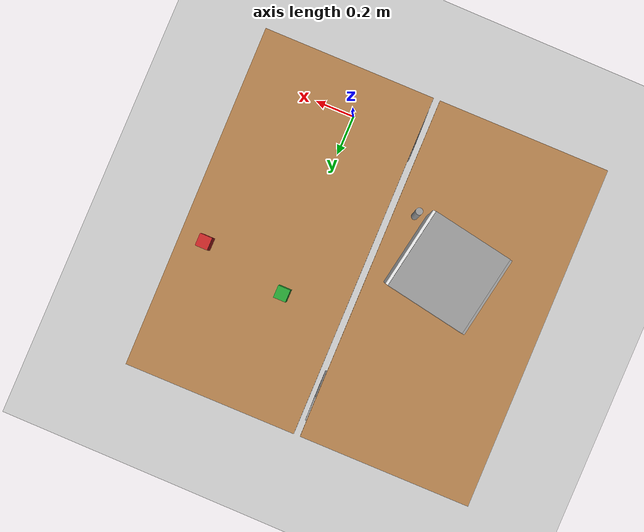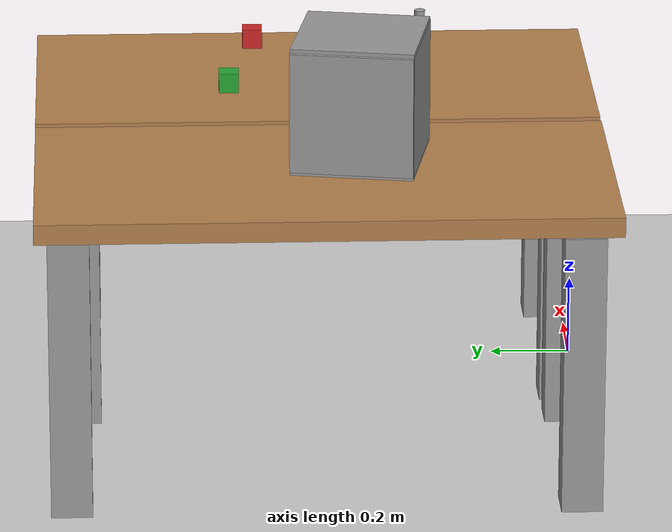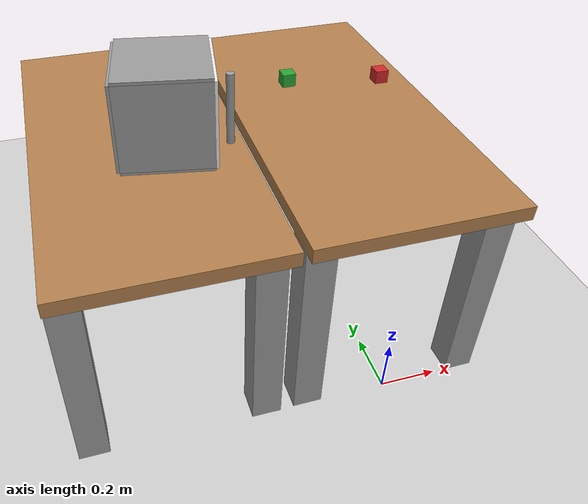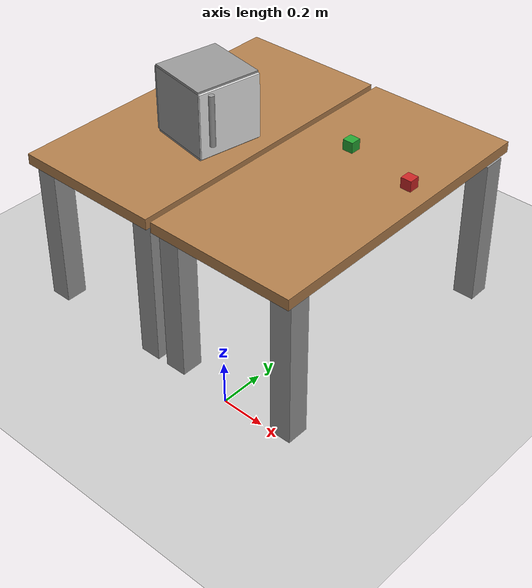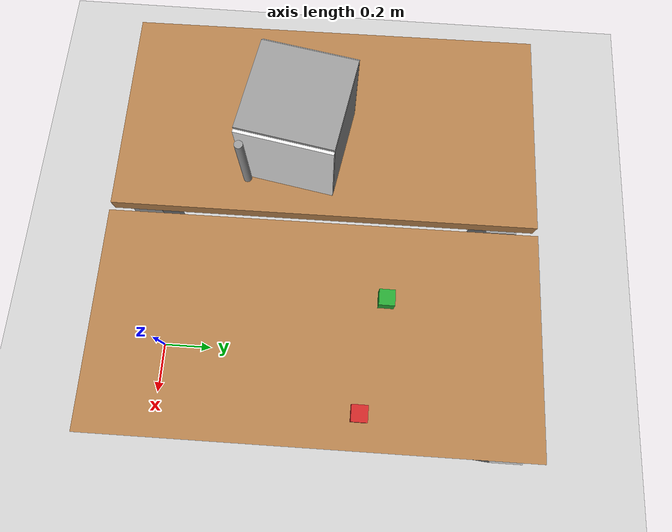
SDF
<sdf version="1.7">
 <world name="default">
  <light name="sun" type="directional">
   <pose>0 0 10 0 -0 0</pose>
   <diffuse>0.8 0.8 0.8 1</diffuse>
   <specular>0.2 0.2 0.2 1</specular>
   <attenuation>
    <range>1000</range>
    <constant>0.9</constant>
    <linear>0.01</linear>
    <quadratic>0.001</quadratic>
   </attenuation>
   <direction>-0.5 0.1 -0.9</direction>
   <spot><inner_angle>0</inner_angle><outer_angle>0</outer_angle><falloff>0</falloff></spot>
  </light>
  <model name="ground_plane">
   <static>1</static>
   <link name="link">
    <collision name="collision">
     <geometry><plane><normal>0 0 1</normal><size>100 100</size></plane></geometry>
     <surface>
      <contact><collide_bitmask>65535</collide_bitmask></contact>
      <friction><ode><mu>100</mu><mu2>50</mu2></ode></friction>
     </surface>
    </collision>
    <visual name="visual">
     <cast_shadows>0</cast_shadows>
     <geometry><plane><normal>0 0 1</normal><size>100 100</size></plane></geometry>
     <material>
      <script><uri>file://media/materials/scripts/gazebo.material</uri><name>Gazebo/Grey</name></script>
     </material>
    </visual>
   </link>
  </model>
  <gravity>0 0 -9.8</gravity>
  <magnetic_field>6e-06 2.3e-05 -4.2e-05</magnetic_field>
  <atmosphere type="adiabatic"/>
  <physics type="ode">
   <max_step_size>0.001</max_step_size>
   <real_time_factor>1</real_time_factor>
   <real_time_update_rate>1000</real_time_update_rate>
  </physics>
  <scene><ambient>0.4 0.4 0.4 1</ambient><background>0.7 0.7 0.7 1</background><shadows>1</shadows></scene>
  <spherical_coordinates>
   <surface_model>EARTH_WGS84</surface_model>
   <latitude_deg>0</latitude_deg>
   <longitude_deg>0</longitude_deg>
   <elevation>0</elevation>
   <heading_deg>0</heading_deg>
  </spherical_coordinates>
  <model name="Table">
   <static>1</static>
   <link name="leg1">
    <inertial>
     <mass>0.0112693</mass>
     <inertia>
      <ixx>0.00138812</ixx>
      <ixy>0</ixy>
      <ixz>0</ixz>
      <iyy>0.00138812</iyy>
      <iyz>0</iyz>
      <izz>1.878e-05</izz>
     </inertia>
    </inertial>
    <pose>-0 -0.092106 -0.148972 0 -0 0</pose>
    <visual name="visual">
     <geometry><box><size>0.1 0.1 0.699999</size></box></geometry>
     <material>
      <script><name>Gazebo/Grey</name><uri>file://media/materials/scripts/gazebo.material</uri></script>
      <shader type="pixel"><normal_map>__default__</normal_map></shader>
      <ambient>0.3 0.3 0.3 1</ambient>
      <diffuse>0.7 0.7 0.7 1</diffuse>
      <specular>0.01 0.01 0.01 1</specular>
      <emissive>0 0 0 1</emissive>
     </material>
    </visual>
    <collision name="collision">
     <geometry><box><size>0.1 0.1 0.699999</size></box></geometry>
     <surface>
      <friction>
       <ode><mu>1</mu><mu2>1</mu2><fdir1>0 0 0</fdir1><slip1>0</slip1><slip2>0</slip2></ode>
       <torsional>
        <coefficient>1</coefficient>
        <patch_radius>0</patch_radius>
        <surface_radius>0</surface_radius>
        <use_patch_radius>1</use_patch_radius>
        <ode><slip>0</slip></ode>
       </torsional>
      </friction>
      <bounce><restitution_coefficient>0</restitution_coefficient><threshold>1e+06</threshold></bounce>
      <contact>
       <collide_without_contact>0</collide_without_contact>
       <collide_without_contact_bitmask>1</collide_without_contact_bitmask>
       <collide_bitmask>1</collide_bitmask>
       <ode>
        <soft_cfm>0</soft_cfm>
        <soft_erp>0.2</soft_erp>
        <kp>1e+13</kp>
        <kd>1</kd>
        <max_vel>0.01</max_vel>
        <min_depth>0</min_depth>
       </ode>
       <bullet>
        <split_impulse>1</split_impulse>
        <split_impulse_penetration_threshold>-0.01</split_impulse_penetration_threshold>
        <soft_cfm>0</soft_cfm>
        <soft_erp>0.2</soft_erp>
        <kp>1e+13</kp>
        <kd>1</kd>
       </bullet>
      </contact>
     </surface>
    </collision>
   </link>
   <link name="top">
    <inertial>
     <mass>1</mass>
     <inertia>
      <ixx>0.166667</ixx>
      <ixy>0</ixy>
      <ixz>0</ixz>
      <iyy>0.166667</iyy>
      <iyz>0</iyz>
      <izz>0.166667</izz>
     </inertia>
    </inertial>
    <pose>0.610073 0.185782 0.228376 0 -0 0</pose>
    <visual name="visual">
     <geometry><box><size>1.4 0.7 0.05</size></box></geometry>
     <material>
      <lighting>1</lighting>
      <script><uri>file://media/materials/scripts/gazebo.material</uri><name>Gazebo/Wood</name></script>
      <shader type="pixel"><normal_map>__default__</normal_map></shader>
      <ambient>0.3 0.3 0.3 1</ambient>
      <diffuse>0.7 0.7 0.7 1</diffuse>
      <specular>0.01 0.01 0.01 1</specular>
      <emissive>0 0 0 1</emissive>
     </material>
    </visual>
    <collision name="collision">
     <geometry><box><size>1.4 0.7 0.05</size></box></geometry>
     <surface>
      <friction>
       <ode><mu>1</mu><mu2>1</mu2><fdir1>0 0 0</fdir1><slip1>0</slip1><slip2>0</slip2></ode>
       <torsional>
        <coefficient>1</coefficient>
        <patch_radius>0</patch_radius>
        <surface_radius>0</surface_radius>
        <use_patch_radius>1</use_patch_radius>
        <ode><slip>0</slip></ode>
       </torsional>
      </friction>
      <bounce><restitution_coefficient>0</restitution_coefficient><threshold>1e+06</threshold></bounce>
      <contact>
       <collide_without_contact>0</collide_without_contact>
       <collide_without_contact_bitmask>1</collide_without_contact_bitmask>
       <collide_bitmask>1</collide_bitmask>
       <ode>
        <soft_cfm>0</soft_cfm>
        <soft_erp>0.2</soft_erp>
        <kp>1e+13</kp>
        <kd>1</kd>
        <max_vel>0.01</max_vel>
        <min_depth>0</min_depth>
       </ode>
       <bullet>
        <split_impulse>1</split_impulse>
        <split_impulse_penetration_threshold>-0.01</split_impulse_penetration_threshold>
        <soft_cfm>0</soft_cfm>
        <soft_erp>0.2</soft_erp>
        <kp>1e+13</kp>
        <kd>1</kd>
       </bullet>
      </contact>
     </surface>
    </collision>
   </link>
   <link name="leg_2">
    <inertial>
     <mass>0.0112693</mass>
     <inertia>
      <ixx>0.00138812</ixx>
      <ixy>0</ixy>
      <ixz>0</ixz>
      <iyy>0.00138812</iyy>
      <iyz>0</iyz>
      <izz>1.878e-05</izz>
     </inertia>
    </inertial>
    <pose>0.002157 0.486808 -0.148972 0 -0 0</pose>
    <visual name="visual">
     <geometry><box><size>0.1 0.1 0.699999</size></box></geometry>
     <material>
      <script><name>Gazebo/Grey</name><uri>file://media/materials/scripts/gazebo.material</uri></script>
      <shader type="pixel"><normal_map>__default__</normal_map></shader>
      <ambient>0.3 0.3 0.3 1</ambient>
      <diffuse>0.7 0.7 0.7 1</diffuse>
      <specular>0.01 0.01 0.01 1</specular>
      <emissive>0 0 0 1</emissive>
     </material>
    </visual>
    <collision name="collision">
     <geometry><box><size>0.1 0.1 0.699999</size></box></geometry>
     <surface>
      <friction>
       <ode><mu>1</mu><mu2>1</mu2><fdir1>0 0 0</fdir1><slip1>0</slip1><slip2>0</slip2></ode>
       <torsional>
        <coefficient>1</coefficient>
        <patch_radius>0</patch_radius>
        <surface_radius>0</surface_radius>
        <use_patch_radius>1</use_patch_radius>
        <ode><slip>0</slip></ode>
       </torsional>
      </friction>
      <bounce><restitution_coefficient>0</restitution_coefficient><threshold>1e+06</threshold></bounce>
      <contact>
       <collide_without_contact>0</collide_without_contact>
       <collide_without_contact_bitmask>1</collide_without_contact_bitmask>
       <collide_bitmask>1</collide_bitmask>
       <ode>
        <soft_cfm>0</soft_cfm>
        <soft_erp>0.2</soft_erp>
        <kp>1e+13</kp>
        <kd>1</kd>
        <max_vel>0.01</max_vel>
        <min_depth>0</min_depth>
       </ode>
       <bullet>
        <split_impulse>1</split_impulse>
        <split_impulse_penetration_threshold>-0.01</split_impulse_penetration_threshold>
        <soft_cfm>0</soft_cfm>
        <soft_erp>0.2</soft_erp>
        <kp>1e+13</kp>
        <kd>1</kd>
       </bullet>
      </contact>
     </surface>
    </collision>
   </link>
   <link name="leg_3">
    <inertial>
     <mass>0.0112693</mass>
     <inertia>
      <ixx>0.00138812</ixx>
      <ixy>0</ixy>
      <ixz>0</ixz>
      <iyy>0.00138812</iyy>
      <iyz>0</iyz>
      <izz>1.878e-05</izz>
     </inertia>
    </inertial>
    <pose>1.22888 0.47641 -0.148972 0 -0 0</pose>
    <visual name="visual">
     <geometry><box><size>0.1 0.1 0.699999</size></box></geometry>
     <material>
      <script><name>Gazebo/Grey</name><uri>file://media/materials/scripts/gazebo.material</uri></script>
      <shader type="pixel"><normal_map>__default__</normal_map></shader>
      <ambient>0.3 0.3 0.3 1</ambient>
      <diffuse>0.7 0.7 0.7 1</diffuse>
      <specular>0.01 0.01 0.01 1</specular>
      <emissive>0 0 0 1</emissive>
     </material>
    </visual>
    <collision name="collision">
     <geometry><box><size>0.1 0.1 0.699999</size></box></geometry>
     <surface>
      <friction>
       <ode><mu>1</mu><mu2>1</mu2><fdir1>0 0 0</fdir1><slip1>0</slip1><slip2>0</slip2></ode>
       <torsional>
        <coefficient>1</coefficient>
        <patch_radius>0</patch_radius>
        <surface_radius>0</surface_radius>
        <use_patch_radius>1</use_patch_radius>
        <ode><slip>0</slip></ode>
       </torsional>
      </friction>
      <bounce><restitution_coefficient>0</restitution_coefficient><threshold>1e+06</threshold></bounce>
      <contact>
       <collide_without_contact>0</collide_without_contact>
       <collide_without_contact_bitmask>1</collide_without_contact_bitmask>
       <collide_bitmask>1</collide_bitmask>
       <ode>
        <soft_cfm>0</soft_cfm>
        <soft_erp>0.2</soft_erp>
        <kp>1e+13</kp>
        <kd>1</kd>
        <max_vel>0.01</max_vel>
        <min_depth>0</min_depth>
       </ode>
       <bullet>
        <split_impulse>1</split_impulse>
        <split_impulse_penetration_threshold>-0.01</split_impulse_penetration_threshold>
        <soft_cfm>0</soft_cfm>
        <soft_erp>0.2</soft_erp>
        <kp>1e+13</kp>
        <kd>1</kd>
       </bullet>
      </contact>
     </surface>
    </collision>
   </link>
   <link name="leg_4">
    <inertial>
     <mass>0.0112693</mass>
     <inertia>
      <ixx>0.00138812</ixx>
      <ixy>0</ixy>
      <ixz>0</ixz>
      <iyy>0.00138812</iyy>
      <iyz>0</iyz>
      <izz>1.878e-05</izz>
     </inertia>
    </inertial>
    <pose>1.2067 -0.120412 -0.148972 0 -0 0</pose>
    <visual name="visual">
     <geometry><box><size>0.1 0.1 0.699999</size></box></geometry>
     <material>
      <script><name>Gazebo/Grey</name><uri>file://media/materials/scripts/gazebo.material</uri></script>
      <shader type="pixel"><normal_map>__default__</normal_map></shader>
      <ambient>0.3 0.3 0.3 1</ambient>
      <diffuse>0.7 0.7 0.7 1</diffuse>
      <specular>0.01 0.01 0.01 1</specular>
      <emissive>0 0 0 1</emissive>
     </material>
    </visual>
    <collision name="collision">
     <geometry><box><size>0.1 0.1 0.699999</size></box></geometry>
     <surface>
      <friction>
       <ode><mu>1</mu><mu2>1</mu2><fdir1>0 0 0</fdir1><slip1>0</slip1><slip2>0</slip2></ode>
       <torsional>
        <coefficient>1</coefficient>
        <patch_radius>0</patch_radius>
        <surface_radius>0</surface_radius>
        <use_patch_radius>1</use_patch_radius>
        <ode><slip>0</slip></ode>
       </torsional>
      </friction>
      <bounce><restitution_coefficient>0</restitution_coefficient><threshold>1e+06</threshold></bounce>
      <contact>
       <collide_without_contact>0</collide_without_contact>
       <collide_without_contact_bitmask>1</collide_without_contact_bitmask>
       <collide_bitmask>1</collide_bitmask>
       <ode>
        <soft_cfm>0</soft_cfm>
        <soft_erp>0.2</soft_erp>
        <kp>1e+13</kp>
        <kd>1</kd>
        <max_vel>0.01</max_vel>
        <min_depth>0</min_depth>
       </ode>
       <bullet>
        <split_impulse>1</split_impulse>
        <split_impulse_penetration_threshold>-0.01</split_impulse_penetration_threshold>
        <soft_cfm>0</soft_cfm>
        <soft_erp>0.2</soft_erp>
        <kp>1e+13</kp>
        <kd>1</kd>
       </bullet>
      </contact>
     </surface>
    </collision>
   </link>
   <joint name="link_1_JOINT_0" type="fixed">
    <parent>link_1</parent>
    <child>link</child>
    <physics>
     <ode><limit><cfm>0</cfm><erp>0.2</erp></limit><suspension><cfm>0</cfm><erp>0.2</erp></suspension></ode>
    </physics>
   </joint>
   <joint name="link_1_JOINT_1" type="fixed">
    <parent>link_1</parent>
    <child>link_clone</child>
    <physics>
     <ode><limit><cfm>0</cfm><erp>0.2</erp></limit><suspension><cfm>0</cfm><erp>0.2</erp></suspension></ode>
    </physics>
   </joint>
   <joint name="link_1_JOINT_2" type="fixed">
    <parent>link_1</parent>
    <child>link_clone_clone_clone</child>
    <physics>
     <ode><limit><cfm>0</cfm><erp>0.2</erp></limit><suspension><cfm>0</cfm><erp>0.2</erp></suspension></ode>
    </physics>
   </joint>
   <joint name="link_1_JOINT_3" type="fixed">
    <parent>link_1</parent>
    <child>link_clone_clone</child>
    <physics>
     <ode><limit><cfm>0</cfm><erp>0.2</erp></limit><suspension><cfm>0</cfm><erp>0.2</erp></suspension></ode>
    </physics>
   </joint>
   <static>0</static>
   <pose>0.203184 0.049403 0.49897 0.000135 -3.1e-05 1.57966</pose>
  </model>
  <model name="green_box_1">
   <pose>-0.095 0.872659 0.777412 2.5e-05 0.000134 3.8e-05</pose>
   <link name="link">
    <inertial>
     <mass>1</mass>
     <inertia>
      <ixx>0.166667</ixx>
      <ixy>0</ixy>
      <ixz>0</ixz>
      <iyy>0.166667</iyy>
      <iyz>0</iyz>
      <izz>0.166667</izz>
     </inertia>
    </inertial>
    <collision name="collision"><geometry><box><size>0.05 0.05 0.05</size></box></geometry></collision>
    <visual name="visual">
     <geometry><box><size>0.05 0.05 0.05</size></box></geometry>
     <material>
      <script><name>Gazebo/Green</name><uri>file://media/materials/scripts/gazebo.material</uri></script>
     </material>
    </visual>
   </link>
  </model>
  <model name="red_box_1">
   <pose>0.254034 0.807767 0.777364 9.3e-05 0.000137 3.6e-05</pose>
   <link name="link">
    <inertial>
     <mass>1</mass>
     <inertia>
      <ixx>0.166667</ixx>
      <ixy>0</ixy>
      <ixz>0</ixz>
      <iyy>0.166667</iyy>
      <iyz>0</iyz>
      <izz>0.166667</izz>
     </inertia>
    </inertial>
    <collision name="collision"><geometry><box><size>0.05 0.05 0.05</size></box></geometry></collision>
    <visual name="visual">
     <geometry><box><size>0.05 0.05 0.05</size></box></geometry>
     <material>
      <script><name>Gazebo/Red</name><uri>file://media/materials/scripts/gazebo.material</uri></script>
     </material>
    </visual>
   </link>
  </model>
  <model name="Cabinet30_0">
   <link name="link_0">
    <inertial>
     <mass>1</mass>
     <inertia>
      <ixx>0.166667</ixx>
      <ixy>0</ixy>
      <ixz>0</ixz>
      <iyy>0.166667</iyy>
      <iyz>0</iyz>
      <izz>0.166667</izz>
     </inertia>
     <joint name="bc" type="fixed">
      <parent>world</parent>
      <child>Cabinet30::link_0</child>
      <physics>
       <ode><implicit_spring_damper>1</implicit_spring_damper><cfm>0.9</cfm><erp>0.2</erp></ode>
       <provide_feedback>1</provide_feedback>
      </physics>
     </joint>
    </inertial>
    <pose>0.028253 0.00951 -0.156009 0 -0 0</pose>
    <visual name="visual">
     <geometry><box><size>0.3 0.3 0.02</size></box></geometry>
     <material>
      <lighting>1</lighting>
      <script><uri>file://media/materials/scripts/gazebo.material</uri><name>Gazebo/Grey</name></script>
      <shader type="pixel"><normal_map>__default__</normal_map></shader>
      <ambient>0.3 0.3 0.3 1</ambient>
      <diffuse>0.7 0.7 0.7 1</diffuse>
      <specular>0.01 0.01 0.01 1</specular>
      <emissive>0 0 0 1</emissive>
     </material>
    </visual>
    <collision name="collision">
     <geometry><box><size>0.3 0.3 0.02</size></box></geometry>
     <surface>
      <friction>
       <ode><mu>1</mu><mu2>1</mu2><fdir1>0 0 0</fdir1><slip1>0</slip1><slip2>0</slip2></ode>
       <torsional>
        <coefficient>1</coefficient>
        <patch_radius>0</patch_radius>
        <surface_radius>0</surface_radius>
        <use_patch_radius>1</use_patch_radius>
        <ode><slip>0</slip></ode>
       </torsional>
      </friction>
      <bounce><restitution_coefficient>0</restitution_coefficient><threshold>1e+06</threshold></bounce>
      <contact>
       <collide_without_contact>0</collide_without_contact>
       <collide_without_contact_bitmask>1</collide_without_contact_bitmask>
       <collide_bitmask>1</collide_bitmask>
       <ode>
        <soft_cfm>0</soft_cfm>
        <soft_erp>0.2</soft_erp>
        <kp>1e+13</kp>
        <kd>1</kd>
        <max_vel>0.01</max_vel>
        <min_depth>0</min_depth>
       </ode>
       <bullet>
        <split_impulse>1</split_impulse>
        <split_impulse_penetration_threshold>-0.01</split_impulse_penetration_threshold>
        <soft_cfm>0</soft_cfm>
        <soft_erp>0.2</soft_erp>
        <kp>1e+13</kp>
        <kd>1</kd>
       </bullet>
      </contact>
     </surface>
    </collision>
   </link>
   <link name="link_0_clone">
    <inertial>
     <mass>1</mass>
     <inertia>
      <ixx>0.166667</ixx>
      <ixy>0</ixy>
      <ixz>0</ixz>
      <iyy>0.166667</iyy>
      <iyz>0</iyz>
      <izz>0.166667</izz>
     </inertia>
    </inertial>
    <pose>0.028253 0.00951 0.143991 0 -0 0</pose>
    <visual name="visual">
     <geometry><box><size>0.3 0.3 0.02</size></box></geometry>
     <material>
      <lighting>1</lighting>
      <script><uri>file://media/materials/scripts/gazebo.material</uri><name>Gazebo/Grey</name></script>
      <shader type="pixel"><normal_map>__default__</normal_map></shader>
      <ambient>0.3 0.3 0.3 1</ambient>
      <diffuse>0.7 0.7 0.7 1</diffuse>
      <specular>0.01 0.01 0.01 1</specular>
      <emissive>0 0 0 1</emissive>
     </material>
    </visual>
    <collision name="collision">
     <geometry><box><size>0.3 0.3 0.02</size></box></geometry>
     <surface>
      <friction>
       <ode><mu>1</mu><mu2>1</mu2><fdir1>0 0 0</fdir1><slip1>0</slip1><slip2>0</slip2></ode>
       <torsional>
        <coefficient>1</coefficient>
        <patch_radius>0</patch_radius>
        <surface_radius>0</surface_radius>
        <use_patch_radius>1</use_patch_radius>
        <ode><slip>0</slip></ode>
       </torsional>
      </friction>
      <bounce><restitution_coefficient>0</restitution_coefficient><threshold>1e+06</threshold></bounce>
      <contact>
       <collide_without_contact>0</collide_without_contact>
       <collide_without_contact_bitmask>1</collide_without_contact_bitmask>
       <collide_bitmask>1</collide_bitmask>
       <ode>
        <soft_cfm>0</soft_cfm>
        <soft_erp>0.2</soft_erp>
        <kp>1e+13</kp>
        <kd>1</kd>
        <max_vel>0.01</max_vel>
        <min_depth>0</min_depth>
       </ode>
       <bullet>
        <split_impulse>1</split_impulse>
        <split_impulse_penetration_threshold>-0.01</split_impulse_penetration_threshold>
        <soft_cfm>0</soft_cfm>
        <soft_erp>0.2</soft_erp>
        <kp>1e+13</kp>
        <kd>1</kd>
       </bullet>
      </contact>
     </surface>
    </collision>
   </link>
   <link name="link_0_clone_clone">
    <inertial>
     <mass>1</mass>
     <inertia>
      <ixx>0.166667</ixx>
      <ixy>0</ixy>
      <ixz>0</ixz>
      <iyy>0.166667</iyy>
      <iyz>0</iyz>
      <izz>0.166667</izz>
     </inertia>
    </inertial>
    <pose>0.028253 0.15951 -0.006009 0 -0 0</pose>
    <visual name="visual">
     <geometry><box><size>0.3 0.002 0.3</size></box></geometry>
     <material>
      <lighting>1</lighting>
      <script><uri>file://media/materials/scripts/gazebo.material</uri><name>Gazebo/Grey</name></script>
      <shader type="pixel"><normal_map>__default__</normal_map></shader>
      <ambient>0.3 0.3 0.3 1</ambient>
      <diffuse>0.7 0.7 0.7 1</diffuse>
      <specular>0.01 0.01 0.01 1</specular>
      <emissive>0 0 0 1</emissive>
     </material>
    </visual>
    <collision name="collision">
     <geometry><box><size>0.3 0.02 0.3</size></box></geometry>
     <surface>
      <friction>
       <ode><mu>1</mu><mu2>1</mu2><fdir1>0 0 0</fdir1><slip1>0</slip1><slip2>0</slip2></ode>
       <torsional>
        <coefficient>1</coefficient>
        <patch_radius>0</patch_radius>
        <surface_radius>0</surface_radius>
        <use_patch_radius>1</use_patch_radius>
        <ode><slip>0</slip></ode>
       </torsional>
      </friction>
      <bounce><restitution_coefficient>0</restitution_coefficient><threshold>1e+06</threshold></bounce>
      <contact>
       <collide_without_contact>0</collide_without_contact>
       <collide_without_contact_bitmask>1</collide_without_contact_bitmask>
       <collide_bitmask>1</collide_bitmask>
       <ode>
        <soft_cfm>0</soft_cfm>
        <soft_erp>0.2</soft_erp>
        <kp>1e+13</kp>
        <kd>1</kd>
        <max_vel>0.01</max_vel>
        <min_depth>0</min_depth>
       </ode>
       <bullet>
        <split_impulse>1</split_impulse>
        <split_impulse_penetration_threshold>-0.01</split_impulse_penetration_threshold>
        <soft_cfm>0</soft_cfm>
        <soft_erp>0.2</soft_erp>
        <kp>1e+13</kp>
        <kd>1</kd>
       </bullet>
      </contact>
     </surface>
    </collision>
   </link>
   <link name="link_0_clone_clone_clone">
    <inertial>
     <mass>1</mass>
     <inertia>
      <ixx>0.166667</ixx>
      <ixy>0</ixy>
      <ixz>0</ixz>
      <iyy>0.166667</iyy>
      <iyz>0</iyz>
      <izz>0.166667</izz>
     </inertia>
    </inertial>
    <pose>0.028253 -0.14049 -0.006009 0 -0 0</pose>
    <visual name="visual">
     <geometry><box><size>0.3 0.002 0.3</size></box></geometry>
     <material>
      <lighting>1</lighting>
      <script><uri>file://media/materials/scripts/gazebo.material</uri><name>Gazebo/Grey</name></script>
      <shader type="pixel"><normal_map>__default__</normal_map></shader>
      <ambient>0.3 0.3 0.3 1</ambient>
      <diffuse>0.7 0.7 0.7 1</diffuse>
      <specular>0.01 0.01 0.01 1</specular>
      <emissive>0 0 0 1</emissive>
     </material>
    </visual>
    <collision name="collision">
     <geometry><box><size>0.3 0.02 0.3</size></box></geometry>
     <surface>
      <friction>
       <ode><mu>1</mu><mu2>1</mu2><fdir1>0 0 0</fdir1><slip1>0</slip1><slip2>0</slip2></ode>
       <torsional>
        <coefficient>1</coefficient>
        <patch_radius>0</patch_radius>
        <surface_radius>0</surface_radius>
        <use_patch_radius>1</use_patch_radius>
        <ode><slip>0</slip></ode>
       </torsional>
      </friction>
      <bounce><restitution_coefficient>0</restitution_coefficient><threshold>1e+06</threshold></bounce>
      <contact>
       <collide_without_contact>0</collide_without_contact>
       <collide_without_contact_bitmask>1</collide_without_contact_bitmask>
       <collide_bitmask>1</collide_bitmask>
       <ode>
        <soft_cfm>0</soft_cfm>
        <soft_erp>0.2</soft_erp>
        <kp>1e+13</kp>
        <kd>1</kd>
        <max_vel>0.01</max_vel>
        <min_depth>0</min_depth>
       </ode>
       <bullet>
        <split_impulse>1</split_impulse>
        <split_impulse_penetration_threshold>-0.01</split_impulse_penetration_threshold>
        <soft_cfm>0</soft_cfm>
        <soft_erp>0.2</soft_erp>
        <kp>1e+13</kp>
        <kd>1</kd>
       </bullet>
      </contact>
     </surface>
    </collision>
   </link>
   <link name="link_0_clone_clone_clone_clone">
    <inertial>
     <mass>1</mass>
     <inertia>
      <ixx>0.166667</ixx>
      <ixy>0</ixy>
      <ixz>0</ixz>
      <iyy>0.166667</iyy>
      <iyz>0</iyz>
      <izz>0.166667</izz>
     </inertia>
    </inertial>
    <pose>0.178253 0.00951 -0.006009 0 -0 0</pose>
    <visual name="visual">
     <geometry><box><size>0.02 0.3 0.3</size></box></geometry>
     <material>
      <lighting>1</lighting>
      <script><uri>file://media/materials/scripts/gazebo.material</uri><name>Gazebo/Grey</name></script>
      <shader type="pixel"><normal_map>__default__</normal_map></shader>
      <ambient>0.3 0.3 0.3 1</ambient>
      <diffuse>0.7 0.7 0.7 1</diffuse>
      <specular>0.01 0.01 0.01 1</specular>
      <emissive>0 0 0 1</emissive>
     </material>
    </visual>
    <collision name="collision">
     <geometry><box><size>0.02 0.3 0.3</size></box></geometry>
     <surface>
      <friction>
       <ode><mu>1</mu><mu2>1</mu2><fdir1>0 0 0</fdir1><slip1>0</slip1><slip2>0</slip2></ode>
       <torsional>
        <coefficient>1</coefficient>
        <patch_radius>0</patch_radius>
        <surface_radius>0</surface_radius>
        <use_patch_radius>1</use_patch_radius>
        <ode><slip>0</slip></ode>
       </torsional>
      </friction>
      <bounce><restitution_coefficient>0</restitution_coefficient><threshold>1e+06</threshold></bounce>
      <contact>
       <collide_without_contact>0</collide_without_contact>
       <collide_without_contact_bitmask>1</collide_without_contact_bitmask>
       <collide_bitmask>1</collide_bitmask>
       <ode>
        <soft_cfm>0</soft_cfm>
        <soft_erp>0.2</soft_erp>
        <kp>1e+13</kp>
        <kd>1</kd>
        <max_vel>0.01</max_vel>
        <min_depth>0</min_depth>
       </ode>
       <bullet>
        <split_impulse>1</split_impulse>
        <split_impulse_penetration_threshold>-0.01</split_impulse_penetration_threshold>
        <soft_cfm>0</soft_cfm>
        <soft_erp>0.2</soft_erp>
        <kp>1e+13</kp>
        <kd>1</kd>
       </bullet>
      </contact>
     </surface>
    </collision>
   </link>
   <link name="link_0_clone_clone_clone_clone_clone">
    <inertial>
     <mass>1</mass>
     <inertia>
      <ixx>0.166667</ixx>
      <ixy>0</ixy>
      <ixz>0</ixz>
      <iyy>0.166667</iyy>
      <iyz>0</iyz>
      <izz>0.166667</izz>
     </inertia>
    </inertial>
    <pose>-0.121747 0.00951 -0.006009 0 -0 0</pose>
    <visual name="visual">
     <geometry><box><size>0.02 0.3 0.3</size></box></geometry>
     <material>
      <script><name>Gazebo/White</name><uri>file://media/materials/scripts/gazebo.material</uri></script>
      <shader type="pixel"/>
     </material>
    </visual>
    <collision name="collision">
     <geometry><box><size>0.02 0.3 0.3</size></box></geometry>
     <surface>
      <friction>
       <ode><mu>1</mu><mu2>1</mu2><fdir1>0 0 0</fdir1><slip1>0</slip1><slip2>0</slip2></ode>
       <torsional>
        <coefficient>1</coefficient>
        <patch_radius>0</patch_radius>
        <surface_radius>0</surface_radius>
        <use_patch_radius>1</use_patch_radius>
        <ode><slip>0</slip></ode>
       </torsional>
      </friction>
      <bounce><restitution_coefficient>0</restitution_coefficient><threshold>1e+06</threshold></bounce>
      <contact>
       <collide_without_contact>0</collide_without_contact>
       <collide_without_contact_bitmask>1</collide_without_contact_bitmask>
       <collide_bitmask>1</collide_bitmask>
       <ode>
        <soft_cfm>0</soft_cfm>
        <soft_erp>0.2</soft_erp>
        <kp>1e+13</kp>
        <kd>1</kd>
        <max_vel>0.01</max_vel>
        <min_depth>0</min_depth>
       </ode>
       <bullet>
        <split_impulse>1</split_impulse>
        <split_impulse_penetration_threshold>-0.01</split_impulse_penetration_threshold>
        <soft_cfm>0</soft_cfm>
        <soft_erp>0.2</soft_erp>
        <kp>1e+13</kp>
        <kd>1</kd>
       </bullet>
      </contact>
     </surface>
    </collision>
   </link>
   <link name="link_1">
    <inertial>
     <mass>0.000152659</mass>
     <inertia>
      <ixx>7.05744e-07</ixx>
      <ixy>0</ixy>
      <ixz>0</ixz>
      <iyy>7.05744e-07</iyy>
      <iyz>0</iyz>
      <izz>1.28386e-08</izz>
     </inertia>
    </inertial>
    <pose>-0.16952 0.127825 0.036056 0 -0 0</pose>
    <visual name="visual">
     <geometry><cylinder><radius>0.0129692</radius><length>0.23446</length></cylinder></geometry>
     <material>
      <lighting>1</lighting>
      <script><uri>file://media/materials/scripts/gazebo.material</uri><name>Gazebo/Grey</name></script>
      <shader type="pixel"/>
      <emissive>0 0 0 1</emissive>
     </material>
    </visual>
    <collision name="collision">
     <geometry><cylinder><radius>0.012969</radius><length>0.23446</length></cylinder></geometry>
     <surface>
      <friction>
       <ode><mu>1</mu><mu2>1</mu2><fdir1>0 0 0</fdir1><slip1>0</slip1><slip2>0</slip2></ode>
       <torsional>
        <coefficient>1</coefficient>
        <patch_radius>0</patch_radius>
        <surface_radius>0</surface_radius>
        <use_patch_radius>1</use_patch_radius>
        <ode><slip>0</slip></ode>
       </torsional>
      </friction>
      <bounce><restitution_coefficient>0</restitution_coefficient><threshold>1e+06</threshold></bounce>
      <contact>
       <collide_without_contact>0</collide_without_contact>
       <collide_without_contact_bitmask>1</collide_without_contact_bitmask>
       <collide_bitmask>1</collide_bitmask>
       <ode>
        <soft_cfm>0</soft_cfm>
        <soft_erp>0.2</soft_erp>
        <kp>1e+13</kp>
        <kd>1</kd>
        <max_vel>0.01</max_vel>
        <min_depth>0</min_depth>
       </ode>
       <bullet>
        <split_impulse>1</split_impulse>
        <split_impulse_penetration_threshold>-0.01</split_impulse_penetration_threshold>
        <soft_cfm>0</soft_cfm>
        <soft_erp>0.2</soft_erp>
        <kp>1e+13</kp>
        <kd>1</kd>
       </bullet>
      </contact>
     </surface>
    </collision>
   </link>
   <joint name="link_0_JOINT_0" type="fixed">
    <parent>link_0</parent>
    <child>link_0_clone_clone_clone_clone</child>
    <physics>
     <ode><limit><cfm>0</cfm><erp>0.2</erp></limit><suspension><cfm>0</cfm><erp>0.2</erp></suspension></ode>
    </physics>
   </joint>
   <joint name="link_0_JOINT_1" type="fixed">
    <parent>link_0</parent>
    <child>link_0_clone_clone</child>
    <physics>
     <ode><limit><cfm>0</cfm><erp>0.2</erp></limit><suspension><cfm>0</cfm><erp>0.2</erp></suspension></ode>
    </physics>
   </joint>
   <joint name="link_0_JOINT_2" type="fixed">
    <parent>link_0</parent>
    <child>link_0_clone_clone_clone</child>
    <physics>
     <ode><limit><cfm>0</cfm><erp>0.2</erp></limit><suspension><cfm>0</cfm><erp>0.2</erp></suspension></ode>
    </physics>
   </joint>
   <joint name="link_0_JOINT_3" type="fixed">
    <parent>link_0</parent>
    <child>link_0_clone</child>
    <physics>
     <ode><limit><cfm>0</cfm><erp>0.2</erp></limit><suspension><cfm>0</cfm><erp>0.2</erp></suspension></ode>
    </physics>
   </joint>
   <joint name="link_0_JOINT_4" type="revolute">
    <parent>link_0</parent>
    <child>link_0_clone_clone_clone_clone_clone</child>
    <pose>0 -0.16 0 0 -0 0</pose>
    <axis>
     <xyz>0 0 1</xyz>
     <limit><lower>-0</lower><upper>1.75</upper><effort>-1</effort><velocity>-1</velocity></limit>
     <dynamics>
      <spring_reference>0</spring_reference>
      <spring_stiffness>0</spring_stiffness>
      <damping>0</damping>
      <friction>0.5</friction>
     </dynamics>
    </axis>
    <physics>
     <ode><limit><cfm>0</cfm><erp>0.2</erp></limit><suspension><cfm>0</cfm><erp>0.2</erp></suspension></ode>
    </physics>
   </joint>
   <joint name="link_0_clone_clone_clone_clone_clone_JOINT_5" type="revolute">
    <parent>link_0_clone_clone_clone_clone_clone</parent>
    <child>link_1</child>
    <axis>
     <xyz>0 0 1</xyz>
     <limit>
      <lower>-1.79769e+308</lower>
      <upper>1.79769e+308</upper>
      <effort>-1</effort>
      <velocity>-1</velocity>
     </limit>
     <dynamics>
      <spring_reference>0</spring_reference>
      <spring_stiffness>0</spring_stiffness>
      <damping>0</damping>
      <friction>0</friction>
     </dynamics>
    </axis>
    <physics>
     <ode><limit><cfm>0</cfm><erp>0.2</erp></limit><suspension><cfm>0</cfm><erp>0.2</erp></suspension></ode>
    </physics>
   </joint>
   <static>0</static>
   <pose>-0.585292 0.565266 0.918378 -6e-06 -0.000142 2.96817</pose>
  </model>
  <model name="Table_clone">
   <static>1</static>
   <link name="leg1">
    <inertial>
     <mass>0.0112693</mass>
     <inertia>
      <ixx>0.00138812</ixx>
      <ixy>0</ixy>
      <ixz>0</ixz>
      <iyy>0.00138812</iyy>
      <iyz>0</iyz>
      <izz>1.878e-05</izz>
     </inertia>
    </inertial>
    <pose>-0 -0.092106 -0.148972 0 -0 0</pose>
    <visual name="visual">
     <geometry><box><size>0.1 0.1 0.699999</size></box></geometry>
     <material>
      <script><name>Gazebo/Grey</name><uri>file://media/materials/scripts/gazebo.material</uri></script>
      <shader type="pixel"><normal_map>__default__</normal_map></shader>
      <ambient>0.3 0.3 0.3 1</ambient>
      <diffuse>0.7 0.7 0.7 1</diffuse>
      <specular>0.01 0.01 0.01 1</specular>
      <emissive>0 0 0 1</emissive>
     </material>
    </visual>
    <collision name="collision">
     <geometry><box><size>0.1 0.1 0.699999</size></box></geometry>
     <surface>
      <friction>
       <ode><mu>1</mu><mu2>1</mu2><fdir1>0 0 0</fdir1><slip1>0</slip1><slip2>0</slip2></ode>
       <torsional>
        <coefficient>1</coefficient>
        <patch_radius>0</patch_radius>
        <surface_radius>0</surface_radius>
        <use_patch_radius>1</use_patch_radius>
        <ode><slip>0</slip></ode>
       </torsional>
      </friction>
      <bounce><restitution_coefficient>0</restitution_coefficient><threshold>1e+06</threshold></bounce>
      <contact>
       <collide_without_contact>0</collide_without_contact>
       <collide_without_contact_bitmask>1</collide_without_contact_bitmask>
       <collide_bitmask>1</collide_bitmask>
       <ode>
        <soft_cfm>0</soft_cfm>
        <soft_erp>0.2</soft_erp>
        <kp>1e+13</kp>
        <kd>1</kd>
        <max_vel>0.01</max_vel>
        <min_depth>0</min_depth>
       </ode>
       <bullet>
        <split_impulse>1</split_impulse>
        <split_impulse_penetration_threshold>-0.01</split_impulse_penetration_threshold>
        <soft_cfm>0</soft_cfm>
        <soft_erp>0.2</soft_erp>
        <kp>1e+13</kp>
        <kd>1</kd>
       </bullet>
      </contact>
     </surface>
    </collision>
   </link>
   <link name="top">
    <inertial>
     <mass>1</mass>
     <inertia>
      <ixx>0.166667</ixx>
      <ixy>0</ixy>
      <ixz>0</ixz>
      <iyy>0.166667</iyy>
      <iyz>0</iyz>
      <izz>0.166667</izz>
     </inertia>
    </inertial>
    <pose>0.610073 0.185782 0.228376 0 -0 0</pose>
    <visual name="visual">
     <geometry><box><size>1.4 0.7 0.05</size></box></geometry>
     <material>
      <lighting>1</lighting>
      <script><uri>file://media/materials/scripts/gazebo.material</uri><name>Gazebo/Wood</name></script>
      <shader type="pixel"><normal_map>__default__</normal_map></shader>
      <ambient>0.3 0.3 0.3 1</ambient>
      <diffuse>0.7 0.7 0.7 1</diffuse>
      <specular>0.01 0.01 0.01 1</specular>
      <emissive>0 0 0 1</emissive>
     </material>
    </visual>
    <collision name="collision">
     <geometry><box><size>1.4 0.7 0.05</size></box></geometry>
     <surface>
      <friction>
       <ode><mu>1</mu><mu2>1</mu2><fdir1>0 0 0</fdir1><slip1>0</slip1><slip2>0</slip2></ode>
       <torsional>
        <coefficient>1</coefficient>
        <patch_radius>0</patch_radius>
        <surface_radius>0</surface_radius>
        <use_patch_radius>1</use_patch_radius>
        <ode><slip>0</slip></ode>
       </torsional>
      </friction>
      <bounce><restitution_coefficient>0</restitution_coefficient><threshold>1e+06</threshold></bounce>
      <contact>
       <collide_without_contact>0</collide_without_contact>
       <collide_without_contact_bitmask>1</collide_without_contact_bitmask>
       <collide_bitmask>1</collide_bitmask>
       <ode>
        <soft_cfm>0</soft_cfm>
        <soft_erp>0.2</soft_erp>
        <kp>1e+13</kp>
        <kd>1</kd>
        <max_vel>0.01</max_vel>
        <min_depth>0</min_depth>
       </ode>
       <bullet>
        <split_impulse>1</split_impulse>
        <split_impulse_penetration_threshold>-0.01</split_impulse_penetration_threshold>
        <soft_cfm>0</soft_cfm>
        <soft_erp>0.2</soft_erp>
        <kp>1e+13</kp>
        <kd>1</kd>
       </bullet>
      </contact>
     </surface>
    </collision>
   </link>
   <link name="leg_2">
    <inertial>
     <mass>0.0112693</mass>
     <inertia>
      <ixx>0.00138812</ixx>
      <ixy>0</ixy>
      <ixz>0</ixz>
      <iyy>0.00138812</iyy>
      <iyz>0</iyz>
      <izz>1.878e-05</izz>
     </inertia>
    </inertial>
    <pose>0.002157 0.486808 -0.148972 0 -0 0</pose>
    <visual name="visual">
     <geometry><box><size>0.1 0.1 0.699999</size></box></geometry>
     <material>
      <script><name>Gazebo/Grey</name><uri>file://media/materials/scripts/gazebo.material</uri></script>
      <shader type="pixel"><normal_map>__default__</normal_map></shader>
      <ambient>0.3 0.3 0.3 1</ambient>
      <diffuse>0.7 0.7 0.7 1</diffuse>
      <specular>0.01 0.01 0.01 1</specular>
      <emissive>0 0 0 1</emissive>
     </material>
    </visual>
    <collision name="collision">
     <geometry><box><size>0.1 0.1 0.699999</size></box></geometry>
     <surface>
      <friction>
       <ode><mu>1</mu><mu2>1</mu2><fdir1>0 0 0</fdir1><slip1>0</slip1><slip2>0</slip2></ode>
       <torsional>
        <coefficient>1</coefficient>
        <patch_radius>0</patch_radius>
        <surface_radius>0</surface_radius>
        <use_patch_radius>1</use_patch_radius>
        <ode><slip>0</slip></ode>
       </torsional>
      </friction>
      <bounce><restitution_coefficient>0</restitution_coefficient><threshold>1e+06</threshold></bounce>
      <contact>
       <collide_without_contact>0</collide_without_contact>
       <collide_without_contact_bitmask>1</collide_without_contact_bitmask>
       <collide_bitmask>1</collide_bitmask>
       <ode>
        <soft_cfm>0</soft_cfm>
        <soft_erp>0.2</soft_erp>
        <kp>1e+13</kp>
        <kd>1</kd>
        <max_vel>0.01</max_vel>
        <min_depth>0</min_depth>
       </ode>
       <bullet>
        <split_impulse>1</split_impulse>
        <split_impulse_penetration_threshold>-0.01</split_impulse_penetration_threshold>
        <soft_cfm>0</soft_cfm>
        <soft_erp>0.2</soft_erp>
        <kp>1e+13</kp>
        <kd>1</kd>
       </bullet>
      </contact>
     </surface>
    </collision>
   </link>
   <link name="leg_3">
    <inertial>
     <mass>0.0112693</mass>
     <inertia>
      <ixx>0.00138812</ixx>
      <ixy>0</ixy>
      <ixz>0</ixz>
      <iyy>0.00138812</iyy>
      <iyz>0</iyz>
      <izz>1.878e-05</izz>
     </inertia>
    </inertial>
    <pose>1.22888 0.47641 -0.148972 0 -0 0</pose>
    <visual name="visual">
     <geometry><box><size>0.1 0.1 0.699999</size></box></geometry>
     <material>
      <script><name>Gazebo/Grey</name><uri>file://media/materials/scripts/gazebo.material</uri></script>
      <shader type="pixel"><normal_map>__default__</normal_map></shader>
      <ambient>0.3 0.3 0.3 1</ambient>
      <diffuse>0.7 0.7 0.7 1</diffuse>
      <specular>0.01 0.01 0.01 1</specular>
      <emissive>0 0 0 1</emissive>
     </material>
    </visual>
    <collision name="collision">
     <geometry><box><size>0.1 0.1 0.699999</size></box></geometry>
     <surface>
      <friction>
       <ode><mu>1</mu><mu2>1</mu2><fdir1>0 0 0</fdir1><slip1>0</slip1><slip2>0</slip2></ode>
       <torsional>
        <coefficient>1</coefficient>
        <patch_radius>0</patch_radius>
        <surface_radius>0</surface_radius>
        <use_patch_radius>1</use_patch_radius>
        <ode><slip>0</slip></ode>
       </torsional>
      </friction>
      <bounce><restitution_coefficient>0</restitution_coefficient><threshold>1e+06</threshold></bounce>
      <contact>
       <collide_without_contact>0</collide_without_contact>
       <collide_without_contact_bitmask>1</collide_without_contact_bitmask>
       <collide_bitmask>1</collide_bitmask>
       <ode>
        <soft_cfm>0</soft_cfm>
        <soft_erp>0.2</soft_erp>
        <kp>1e+13</kp>
        <kd>1</kd>
        <max_vel>0.01</max_vel>
        <min_depth>0</min_depth>
       </ode>
       <bullet>
        <split_impulse>1</split_impulse>
        <split_impulse_penetration_threshold>-0.01</split_impulse_penetration_threshold>
        <soft_cfm>0</soft_cfm>
        <soft_erp>0.2</soft_erp>
        <kp>1e+13</kp>
        <kd>1</kd>
       </bullet>
      </contact>
     </surface>
    </collision>
   </link>
   <link name="leg_4">
    <inertial>
     <mass>0.0112693</mass>
     <inertia>
      <ixx>0.00138812</ixx>
      <ixy>0</ixy>
      <ixz>0</ixz>
      <iyy>0.00138812</iyy>
      <iyz>0</iyz>
      <izz>1.878e-05</izz>
     </inertia>
    </inertial>
    <pose>1.2067 -0.120412 -0.148972 0 -0 0</pose>
    <visual name="visual">
     <geometry><box><size>0.1 0.1 0.699999</size></box></geometry>
     <material>
      <script><name>Gazebo/Grey</name><uri>file://media/materials/scripts/gazebo.material</uri></script>
      <shader type="pixel"><normal_map>__default__</normal_map></shader>
      <ambient>0.3 0.3 0.3 1</ambient>
      <diffuse>0.7 0.7 0.7 1</diffuse>
      <specular>0.01 0.01 0.01 1</specular>
      <emissive>0 0 0 1</emissive>
     </material>
    </visual>
    <collision name="collision">
     <geometry><box><size>0.1 0.1 0.699999</size></box></geometry>
     <surface>
      <friction>
       <ode><mu>1</mu><mu2>1</mu2><fdir1>0 0 0</fdir1><slip1>0</slip1><slip2>0</slip2></ode>
       <torsional>
        <coefficient>1</coefficient>
        <patch_radius>0</patch_radius>
        <surface_radius>0</surface_radius>
        <use_patch_radius>1</use_patch_radius>
        <ode><slip>0</slip></ode>
       </torsional>
      </friction>
      <bounce><restitution_coefficient>0</restitution_coefficient><threshold>1e+06</threshold></bounce>
      <contact>
       <collide_without_contact>0</collide_without_contact>
       <collide_without_contact_bitmask>1</collide_without_contact_bitmask>
       <collide_bitmask>1</collide_bitmask>
       <ode>
        <soft_cfm>0</soft_cfm>
        <soft_erp>0.2</soft_erp>
        <kp>1e+13</kp>
        <kd>1</kd>
        <max_vel>0.01</max_vel>
        <min_depth>0</min_depth>
       </ode>
       <bullet>
        <split_impulse>1</split_impulse>
        <split_impulse_penetration_threshold>-0.01</split_impulse_penetration_threshold>
        <soft_cfm>0</soft_cfm>
        <soft_erp>0.2</soft_erp>
        <kp>1e+13</kp>
        <kd>1</kd>
       </bullet>
      </contact>
     </surface>
    </collision>
   </link>
   <joint name="link_1_JOINT_0" type="fixed">
    <parent>link_1</parent>
    <child>link</child>
    <physics>
     <ode><limit><cfm>0</cfm><erp>0.2</erp></limit><suspension><cfm>0</cfm><erp>0.2</erp></suspension></ode>
    </physics>
   </joint>
   <joint name="link_1_JOINT_1" type="fixed">
    <parent>link_1</parent>
    <child>link_clone</child>
    <physics>
     <ode><limit><cfm>0</cfm><erp>0.2</erp></limit><suspension><cfm>0</cfm><erp>0.2</erp></suspension></ode>
    </physics>
   </joint>
   <joint name="link_1_JOINT_2" type="fixed">
    <parent>link_1</parent>
    <child>link_clone_clone_clone</child>
    <physics>
     <ode><limit><cfm>0</cfm><erp>0.2</erp></limit><suspension><cfm>0</cfm><erp>0.2</erp></suspension></ode>
    </physics>
   </joint>
   <joint name="link_1_JOINT_3" type="fixed">
    <parent>link_1</parent>
    <child>link_clone_clone</child>
    <physics>
     <ode><limit><cfm>0</cfm><erp>0.2</erp></limit><suspension><cfm>0</cfm><erp>0.2</erp></suspension></ode>
    </physics>
   </joint>
   <static>0</static>
   <pose>-0.523103 0.042624 0.49897 0.000135 -3.1e-05 1.57966</pose>
  </model>
 </world>
</sdf>
